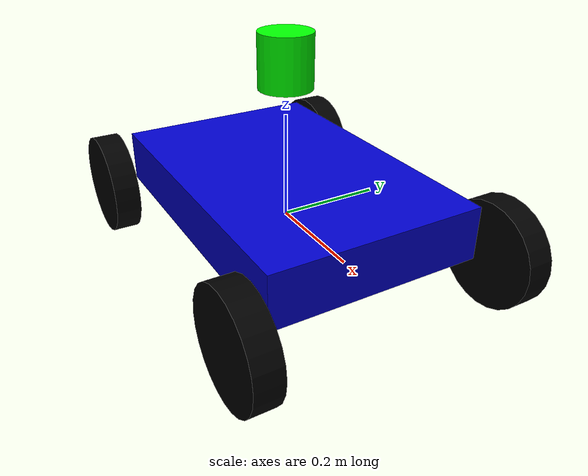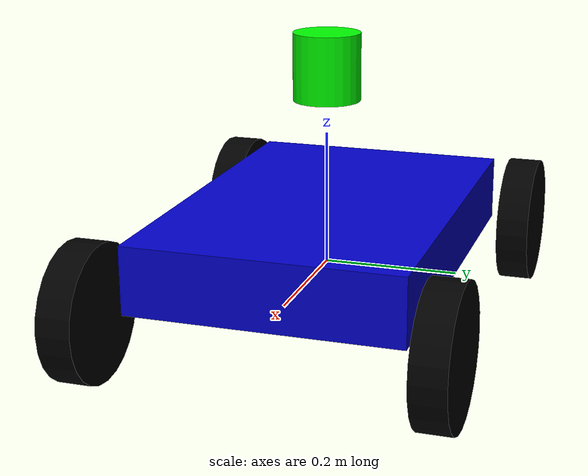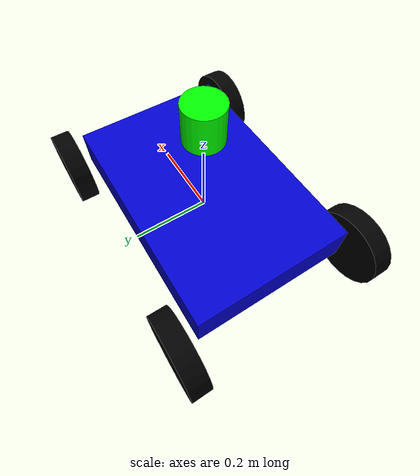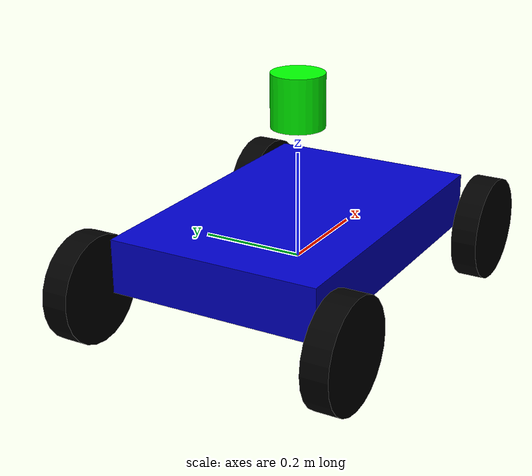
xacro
<?xml version="1.0"?>
<robot xmlns:xacro="http://ros.org/wiki/xacro" name="four_wheel_robot">

  <!-- Include component macros -->
  <xacro:include filename="$(find four_wheel_robot)/urdf/base.xacro"/>
  <xacro:include filename="$(find four_wheel_robot)/urdf/wheel.xacro"/>
  <xacro:include filename="$(find four_wheel_robot)/urdf/lidar.xacro"/>

  <!-- Instantiate base -->
  <xacro:base_link/>

  <!-- Instantiate wheels -->
  <xacro:wheel name="front_left"  x="0.3" y="0.25" z="0.0"/>
  <xacro:wheel name="front_right" x="0.3" y="-0.25" z="0.0"/>
  <xacro:wheel name="rear_left"   x="-0.3" y="0.25" z="0.0"/>
  <xacro:wheel name="rear_right"  x="-0.3" y="-0.25" z="0.0"/>

  <!-- Instantiate lidar -->
  <xacro:lidar x="0.0" y="0.0" z="0.25"/>

</robot>

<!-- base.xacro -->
<robot xmlns:xacro="http://ros.org/wiki/xacro">

  <xacro:macro name="base_link">
    <link name="base_link">
      <visual>
        <geometry>
          <box size="0.6 0.4 0.1"/> <!-- length, width, height -->
        </geometry>
        <origin xyz="0 0 0.05"/>
        <material name="blue">
          <color rgba="0.0 0.0 0.8 1.0"/>
        </material>
      </visual>
      <collision>
        <geometry>
          <box size="0.6 0.4 0.1"/>
        </geometry>
        <origin xyz="0 0 0.05"/>
      </collision>
      <inertial>
        <mass value="5.0"/>
        <inertia ixx="0.1" ixy="0.0" ixz="0.0"
                 iyy="0.1" iyz="0.0"
                 izz="0.1"/>
      </inertial>
    </link>
  </xacro:macro>

</robot>

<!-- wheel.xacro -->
<robot xmlns:xacro="http://ros.org/wiki/xacro">

  <xacro:macro name="wheel" params="name x y z">
    <link name="${name}_wheel">
      <visual>
        <geometry>
          <cylinder length="0.05" radius="0.1"/>
        </geometry>
        <origin rpy="1.5708 0 0" xyz="0 0 0"/>
        <material name="black">
          <color rgba="0.0 0.0 0.0 1.0"/>
        </material>
      </visual>
      <collision>
        <geometry>
          <cylinder length="0.05" radius="0.1"/>
        </geometry>
        <origin rpy="1.5708 0 0" xyz="0 0 0"/>
      </collision>
      <inertial>
        <mass value="1.0"/>
        <inertia ixx="0.01" ixy="0.0" ixz="0.0"
                 iyy="0.01" iyz="0.0"
                 izz="0.01"/>
      </inertial>
    </link>

    <!-- Revolute joint to base -->
    <joint name="${name}_joint" type="continuous">
      <parent link="base_link"/>
      <child link="${name}_wheel"/>
      <origin xyz="${x} ${y} ${z}" rpy="0 0 0"/>
      <axis xyz="0 1 0"/>
    </joint>
  </xacro:macro>

</robot>

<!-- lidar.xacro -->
<robot xmlns:xacro="http://ros.org/wiki/xacro">

  <xacro:macro name="lidar" params="x y z">
    <link name="lidar_link">
      <visual>
        <geometry>
          <cylinder length="0.1" radius="0.05"/>
        </geometry>
        <origin xyz="0 0 0.05"/>
        <material name="green">
          <color rgba="0.0 1.0 0.0 1.0"/>
        </material>
      </visual>
      <collision>
        <geometry>
          <cylinder length="0.1" radius="0.05"/>
        </geometry>
        <origin xyz="0 0 0.05"/>
      </collision>
      <inertial>
        <mass value="0.5"/>
        <inertia ixx="0.01" ixy="0.0" ixz="0.0"
                 iyy="0.01" iyz="0.0"
                 izz="0.01"/>
      </inertial>
    </link>

    <joint name="lidar_joint" type="fixed">
      <parent link="base_link"/>
      <child link="lidar_link"/>
      <origin xyz="${x} ${y} ${z}" rpy="0 0 0"/>
    </joint>
  </xacro:macro>

</robot>
